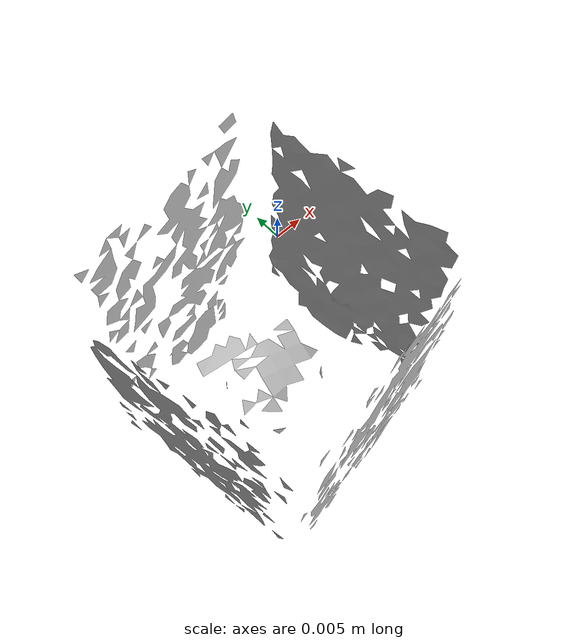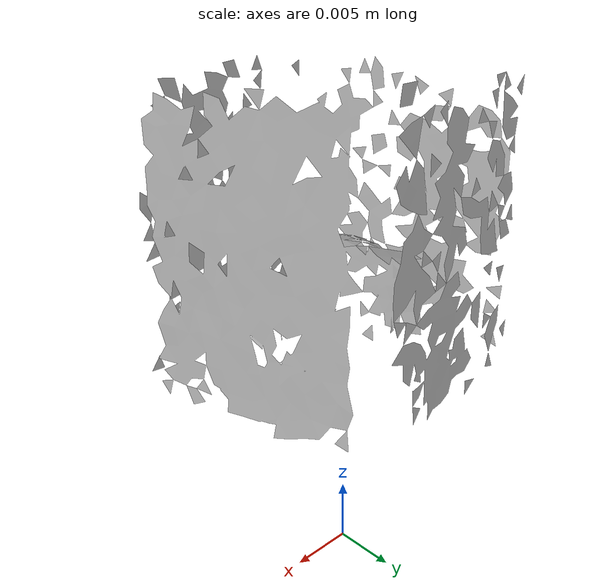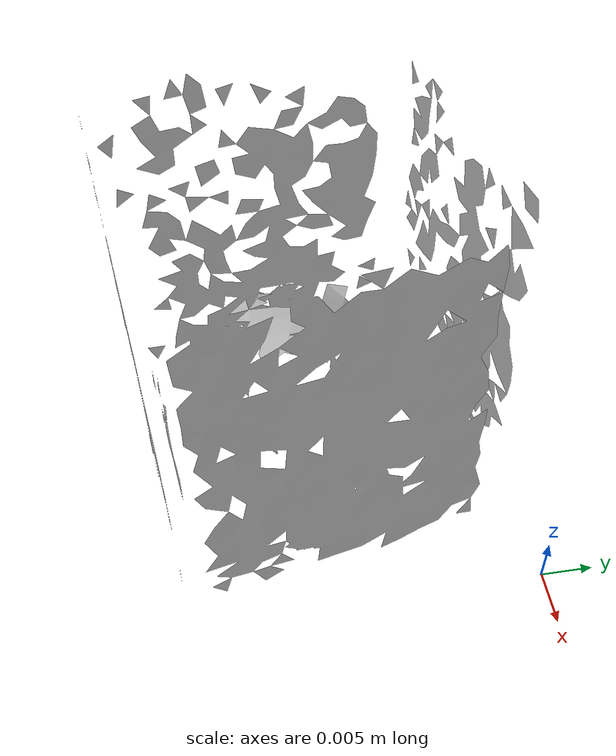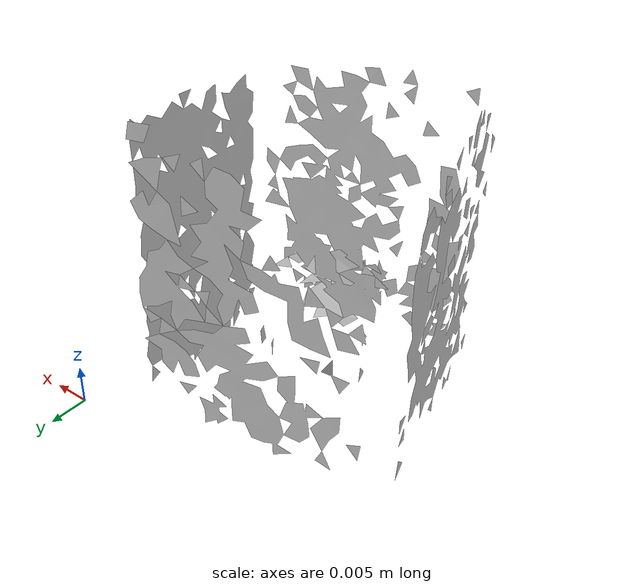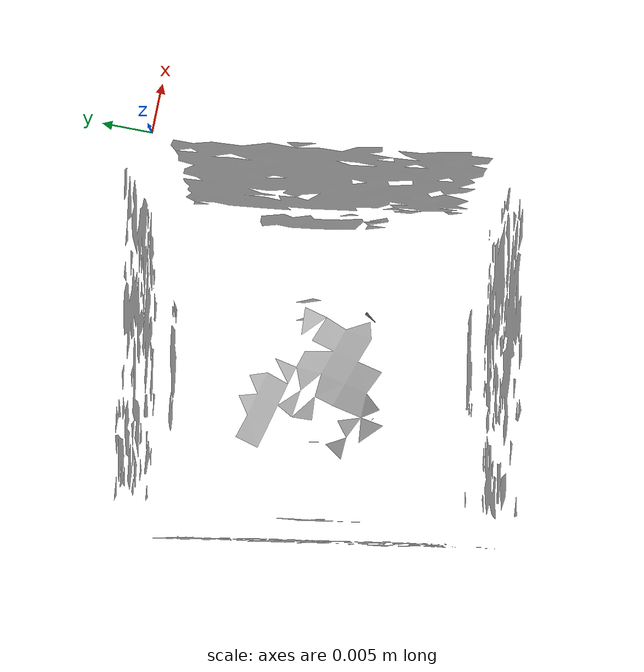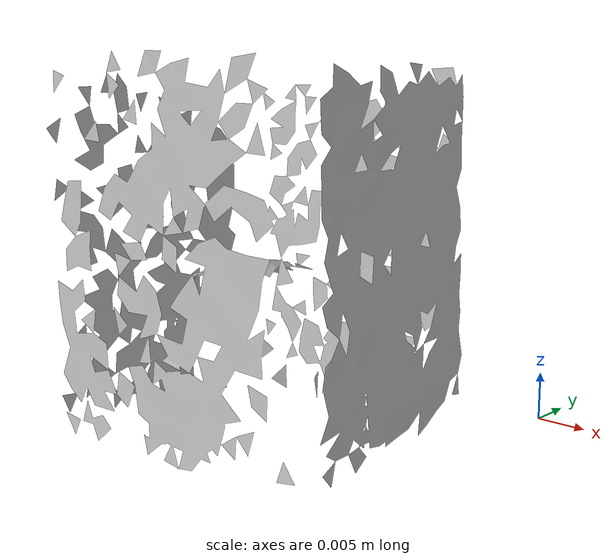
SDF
<?xml version="1.0" ?>
<sdf version="1.4">
  <model name='ycb_073-b_lego_duplo'>
    <link name='body'>
      <inertial>
        <mass>0.0399282742205</mass>
        <pose>-0.0201519539362 -0.0207011690674 0.0237419407421 0 0 0</pose>
        <inertia>
          <ixx>7.35811708191e-06</ixx>
          <ixy>-8.8938345495e-10</ixy>
          <ixz>-2.49983661058e-08</ixz>
          <iyy>7.38202388745e-06</iyy>
          <iyz>1.77851921307e-08</iyz>
          <izz>7.272699461e-06</izz>
        </inertia>
      </inertial>
      <visual name='ycb_073-b_lego_duplo_visual'>
        <pose>0 0 0 0 0 0</pose>
        <geometry>
          <mesh>
            <uri>model://ycb_073-b_lego_duplo/meshes/textured.dae</uri>
          </mesh>
        </geometry>
      </visual>
      <collision name='ycb_073-b_lego_duplo_collision'>
        <pose>0 0 0 0 0 0</pose>
        <geometry>
          <mesh>
            <uri>model://ycb_073-b_lego_duplo/meshes/nontextured.stl</uri>
          </mesh>
        </geometry>
        <max_contacts>10</max_contacts>
      </collision>
    </link>
  </model>
</sdf>
